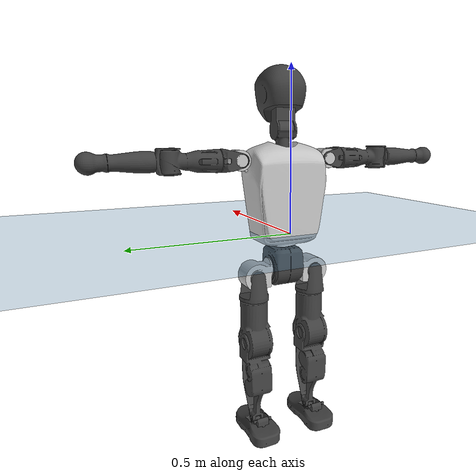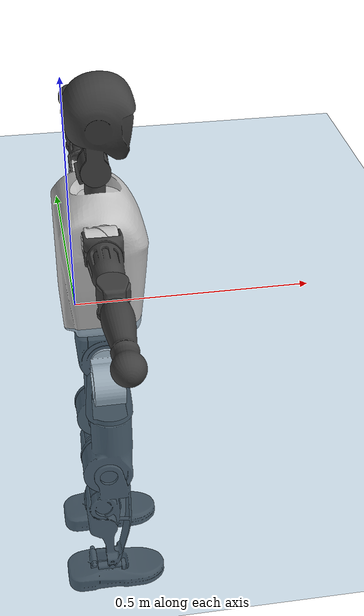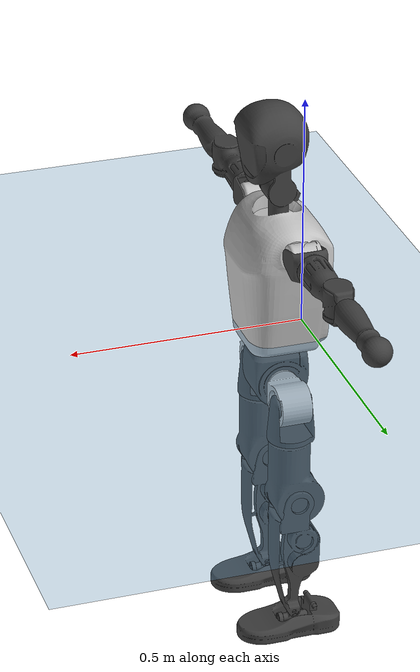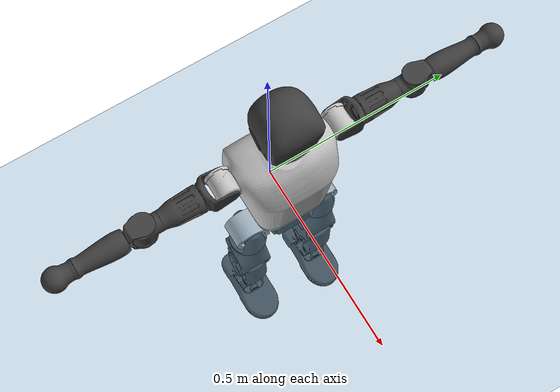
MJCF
<mujoco model="T1">
  <compiler angle="radian" assetdir="assets" balanceinertia="true" inertiafromgeom="false"/>

  <option timestep="0.005" density="1.2" viscosity="2e-05"/>

  <size nkey="1"/>

  <visual>
    <quality shadowsize="8192"/>
    <map shadowclip="0.5"/>
  </visual>

  <default>
    <default class="/">
      <joint armature="0.01" damping="0.01" frictionloss="0.1"/>
      <geom contype="0" conaffinity="0" group="1" solref="-1000 -80"/>
      <site size="0.01 0.005 0.005" group="5"/>
      <general forcelimited="true" biastype="affine" gainprm="25" biasprm="0 -25 -0.6"/>
      <default class="t1">
        <geom rgba="0.25 0.25 0.25 1"/>
        <default class="visual">
          <geom type="mesh" group="2"/>
        </default>
        <default class="collision">
          <geom group="3"/>
        </default>
        <default class="foot">
          <geom size="0.1115 0.05 0.015" type="box" condim="6" group="4" priority="1" solimp="0.015 1 0.015"/>
        </default>
        <default class="reward_collision_sphere">
          <geom group="5" rgba="1 0 0 1"/>
        </default>
      </default>
    </default>
  </default>

  <asset>
    <texture type="skybox" colorspace="auto" name="//unnamed_texture_0" builtin="gradient" rgb1="0.95 0.95 0.95" rgb2="0.95 0.95 0.95" width="100" height="600"/>
    <texture type="2d" colorspace="auto" name="texplane" builtin="checker" rgb1="0.345 0.575 0.748" rgb2="0.345 0.575 0.748" markrgb="1 1 1" width="512" height="512"/>
    <material name="MatPlane" class="/" texture="texplane" texuniform="true" texrepeat="2 2" specular="0.9"/>
    <mesh name="Trunk" class="/" file="Trunk.stl"/>
    <mesh name="H1" class="/" file="H1.stl"/>
    <mesh name="H2" class="/" file="H2.stl"/>
    <mesh name="AL1" class="/" file="AL1.stl"/>
    <mesh name="AL2" class="/" file="AL2.stl"/>
    <mesh name="AL3" class="/" file="AL3.stl"/>
    <mesh name="left_hand_link" class="/" file="left_hand_link.stl"/>
    <mesh name="AR1" class="/" file="AR1.stl"/>
    <mesh name="AR2" class="/" file="AR2.stl"/>
    <mesh name="AR3" class="/" file="AR3.stl"/>
    <mesh name="right_hand_link" class="/" file="right_hand_link.stl"/>
    <mesh name="Waist" class="/" file="Waist.stl"/>
    <mesh name="Hip_Pitch_Left" class="/" file="Hip_Pitch_Left.stl"/>
    <mesh name="Hip_Roll_Left" class="/" file="Hip_Roll_Left.stl"/>
    <mesh name="Hip_Yaw_Left" class="/" file="Hip_Yaw_Left.stl"/>
    <mesh name="Shank_Left" class="/" file="Shank_Left.stl"/>
    <mesh name="Ankle_Cross_Left" class="/" file="Ankle_Cross_Left.stl"/>
    <mesh name="left_foot_link" class="/" file="left_foot_link.stl"/>
    <mesh name="Hip_Pitch_Right" class="/" file="Hip_Pitch_Right.stl"/>
    <mesh name="Hip_Roll_Right" class="/" file="Hip_Roll_Right.stl"/>
    <mesh name="Hip_Yaw_Right" class="/" file="Hip_Yaw_Right.stl"/>
    <mesh name="Shank_Right" class="/" file="Shank_Right.stl"/>
    <mesh name="Ankle_Cross_Right" class="/" file="Ankle_Cross_Right.stl"/>
    <mesh name="right_foot_link" class="/" file="right_foot_link.stl"/>
  </asset>

  <worldbody>
    <geom name="floor" class="/" size="100 100 0.125" type="plane" group="0" material="MatPlane"/>
    <light name="toplight_shadow" class="/" pos="0 0 5" dir="0.0990148 0.0990148 -0.990148" type="directional" ambient="0.04 0.04 0.04" diffuse="0.55 0.55 0.55" specular="0.12 0.12 0.12"/>
    <light name="toplight_fill" class="/" pos="0 0 5" dir="0.0990148 0.0990148 -0.990148" type="directional" castshadow="false" ambient="0.04 0.04 0.04" diffuse="0.3 0.3 0.3" specular="0.08 0.08 0.08"/>
    <body name="trunk" childclass="t1" pos="-7.5306e-05 0.000958466 -1.03091e-05" quat="1 0.00011687 -1.09864e-05 -5.59455e-05">
      <inertial pos="0.0488709 0.000196642 0.108887" quat="0.999966 0.000859855 -0.00817147 1.22996e-05" mass="10.4866" diaginertia="0.0526656 0.0635473 0.0677057"/>
      <joint name="//unnamed_joint_0" type="free" armature="0" damping="0" frictionloss="0"/>
      <geom name="//unnamed_geom_1" class="visual" rgba="0.76 0.76 0.76 1" mesh="Trunk"/>
      <geom name="//unnamed_geom_2" class="collision" size="0.0721783 0.0962378 0.144357" pos="0.0533712 0 0.124383" type="box"/>
      <geom name="//unnamed_geom_3" class="reward_collision_sphere" size="0.110673" pos="0.0533712 0 0.103653"/>
      <geom name="//unnamed_geom_4" class="reward_collision_sphere" size="0.0144357" pos="0.0533712 0.0816922 0"/>
      <geom name="//unnamed_geom_5" class="reward_collision_sphere" size="0.0144357" pos="0.0533712 -0.0816922 0"/>
      <geom name="//unnamed_geom_6" class="reward_collision_sphere" size="0.0144357" pos="0.0533712 0.102836 0.186575"/>
      <geom name="//unnamed_geom_7" class="reward_collision_sphere" size="0.0144357" pos="0.0533712 -0.102836 0.186575"/>
      <site name="imu" pos="-0.00197492 -0.000259303 0.0022659" size="0.00962378"/>
      <camera name="track" pos="0 -1.92217 0" quat="0.707107 0.707107 0 0" mode="trackcom"/>
      <camera name="ego_camera" pos="0.108521 0 0.435342" quat="-0.5 -0.5 0.5 0.5"/>
      <body name="H1" pos="0.0547644 -0.000220997 0.250606" quat="1 4.85523e-05 4.77791e-05 -5.86094e-05">
        <inertial pos="-0.00137355 -0.00170589 0.0594999" quat="0.763787 -0.0130293 0.00164367 0.645335" mass="0.399263" diaginertia="0.000136469 0.000183396 0.000179872"/>
        <joint name="AAHead_yaw" pos="0 0 0" axis="-0.00233239 -0.00106281 0.999997" range="-1.57847 1.56573" armature="0.0100799" damping="0.0118204" frictionloss="0.0997005"/>
        <geom name="//unnamed_geom_8" class="visual" mesh="H1"/>
        <body name="H2" pos="0.00065113 -0.00196578 0.0641625" quat="1 7.44907e-05 -0.000213347 -0.000313218">
          <inertial pos="0.00621784 0.000300415 0.100811" quat="0.988457 0.106568 -0.0741143 -0.0781236" mass="0.555261" diaginertia="0.00113846 0.00154796 0.00206576"/>
          <joint name="Head_pitch" pos="0 0 0" axis="-0.00176831 -0.999997 0.00151384" range="-1.21783 0.348539" armature="0.00921241" damping="0.00228346" frictionloss="0.0986336"/>
          <geom name="//unnamed_geom_9" class="visual" mesh="H2"/>
          <geom name="//unnamed_geom_10" class="collision" size="0.0769902" pos="0.0088952 0 0.114018"/>
          <geom name="//unnamed_geom_11" class="reward_collision_sphere" size="0.086614" pos="0.0177904 0 0.103653"/>
        </body>
      </body>
      <body name="AL1" pos="0.0523748 0.102455 0.226241" quat="1 0.000322464 -5.04451e-05 0.000364431">
        <inertial pos="-2.84728e-05 0.043107 8.12085e-05" quat="0.504563 0.495965 -0.503857 0.495542" mass="0.477566" diaginertia="0.000771099 0.00105672 0.000352794"/>
        <joint name="Left_Shoulder_Pitch" pos="0 0 0" axis="0.000835133 0.999999 0.00055576" range="-3.29023 1.24476" armature="0.00962992" damping="0.000749661" frictionloss="0.0916643"/>
        <geom name="//unnamed_geom_12" class="visual" rgba="0.76 0.76 0.76 1" mesh="AL1"/>
        <body name="AL2" pos="0.00049291 0.0449272 -0.0002935" quat="1 3.0616e-05 -4.64831e-05 5.4404e-05">
          <inertial pos="0.00410131 0.0371812 0.000659108" quat="0.490025 0.511093 -0.488142 0.510271" mass="0.140769" diaginertia="0.000220231 0.000281493 0.000211655"/>
          <joint name="Left_Shoulder_Roll" pos="0 0 0" axis="-0.999999 0.00059371 0.00130834" range="-1.59119 1.73415" armature="0.0101591" damping="0.00556984" frictionloss="0.0965859"/>
          <geom name="//unnamed_geom_13" class="visual" mesh="AL2"/>
          <body name="AL3" pos="0.000196968 0.0587593 -0.000342516" quat="1 -2.36873e-06 -8.9979e-05 5.35883e-05">
            <inertial pos="0.000175946 0.0810062 -0.000773139" quat="0.70699 0.707209 -0.00443451 0.000114779" mass="0.900319" diaginertia="0.00719897 0.0104757 0.000745555"/>
            <joint name="Left_Elbow_Pitch" pos="0 0 0" axis="0.0014461 -0.999988 0.00469334" stiffness="0.00347499" range="-2.29902 2.28657" armature="0.0104573" damping="0.00760442" frictionloss="0.0978093"/>
            <geom name="//unnamed_geom_14" class="visual" mesh="AL3"/>
            <geom name="//unnamed_geom_15" class="collision" size="0.0288713 0.0721783" pos="0 0.0480542 0" quat="0.707105 0.707108 0 0" type="cylinder"/>
            <geom name="//unnamed_geom_16" class="reward_collision_sphere" size="0.0346456"/>
            <body name="left_hand_link" pos="0.000403183 0.142201 0.00131309" quat="1 0.000336295 0.00014197 0.000413908">
              <inertial pos="-0.00122688 0.104475 0.000333554" quat="0.707644 0.706569 2.60462e-05 -7.56325e-05" mass="0.291607" diaginertia="0.00451274 0.00659993 0.000259512"/>
              <joint name="Left_Elbow_Yaw" pos="0 0 0" axis="0.00313086 0.00453505 0.999985" range="-2.44028 -0.0253281" armature="0.00937883" damping="0.00805847" frictionloss="0.095325"/>
              <geom name="//unnamed_geom_17" class="visual" mesh="left_hand_link"/>
              <geom name="//unnamed_geom_18" class="collision" size="0.0288713 0.0842081" pos="0 0.124941 0" quat="0.707105 0.707108 0 0" type="cylinder"/>
              <geom name="//unnamed_geom_19" class="reward_collision_sphere" size="0.0481189"/>
              <geom name="//unnamed_geom_20" class="reward_collision_sphere" size="0.0336832" pos="0 0.105719 0"/>
              <geom name="//unnamed_geom_21" class="reward_collision_sphere" size="0.0336832" pos="0 0.206633 0"/>
            </body>
          </body>
        </body>
      </body>
      <body name="AR1" pos="0.049925 -0.101758 0.227106" quat="1 1.84465e-05 0.000833557 -6.88315e-05">
        <inertial pos="-0.000337949 -0.0451906 -0.000320362" quat="0.501704 0.496452 -0.503266 0.498549" mass="0.467967" diaginertia="0.000767123 0.00105796 0.000345091"/>
        <joint name="Right_Shoulder_Pitch" pos="0 0 0" axis="-0.000475312 -0.999987 0.00500606" range="-1.22504 3.32851" armature="0.00981331" damping="0.0105692" frictionloss="0.100812"/>
        <geom name="//unnamed_geom_22" class="visual" rgba="0.76 0.76 0.76 1" mesh="AR1"/>
        <body name="AR2" pos="0.000686584 -0.0447761 0.000817076" quat="1 -0.000504556 -0.000183357 7.63905e-05">
          <inertial pos="0.00409461 -0.0365141 0.000477373" quat="0.513374 0.486444 -0.514423 0.484962" mass="0.141282" diaginertia="0.000223594 0.000286175 0.000210985"/>
          <joint name="Right_Shoulder_Roll" pos="0 0 0" axis="-0.999974 -0.00570771 -0.00444552" range="-1.75457 1.55795" armature="0.00973215" damping="0.00356904" frictionloss="0.104189"/>
          <geom name="//unnamed_geom_23" class="visual" mesh="AR2"/>
          <body name="AR3" pos="-0.00111796 -0.0590903 -0.00195949" quat="1 6.37891e-06 -2.5815e-05 -0.00010911">
            <inertial pos="-0.000486416 -0.0828981 0.000844467" quat="0.709247 0.704959 0.000239441 0.00115052" mass="0.911324" diaginertia="0.00719058 0.0105057 0.000749383"/>
            <joint name="Right_Elbow_Pitch" pos="0 0 0" axis="0.000536215 0.999998 -0.00204702" range="-2.2829 2.2852" armature="0.00919496" damping="0.0104171" frictionloss="0.0930266"/>
            <geom name="//unnamed_geom_24" class="visual" mesh="AR3"/>
            <geom name="//unnamed_geom_25" class="collision" size="0.0288713 0.0721783" pos="0 -0.0480542 0" quat="0.707105 0.707108 0 0" type="cylinder"/>
            <geom name="//unnamed_geom_26" class="reward_collision_sphere" size="0.0346456"/>
            <body name="right_hand_link" pos="-0.000102592 -0.141041 0.000334425" quat="1 1.09119e-05 5.75485e-05 -1.16792e-05">
              <inertial pos="-0.000281869 -0.104197 0.00200219" quat="0.706134 0.708078 4.0886e-05 -2.02634e-05" mass="0.293344" diaginertia="0.0045819 0.00674827 0.000260545"/>
              <joint name="Right_Elbow_Yaw" pos="0 0 0" axis="0.00330379 0.00470252 0.999983" range="0.00366539 2.42401" armature="0.00989704" damping="0.000106019" frictionloss="0.0947527"/>
              <geom name="//unnamed_geom_27" class="visual" mesh="right_hand_link"/>
              <geom name="//unnamed_geom_28" class="collision" size="0.0288713 0.0842081" pos="0 -0.124941 0" quat="0.707105 0.707108 0 0" type="cylinder"/>
              <geom name="//unnamed_geom_29" class="reward_collision_sphere" size="0.0481189"/>
              <geom name="//unnamed_geom_30" class="reward_collision_sphere" size="0.0336832" pos="0 -0.105719 0"/>
              <geom name="//unnamed_geom_31" class="reward_collision_sphere" size="0.0336832" pos="0 -0.206633 0"/>
            </body>
          </body>
        </body>
      </body>
      <body name="Waist" pos="0.0564194 -0.00137654 -0.118129" quat="1 0.000259488 -0.000188757 -0.000273393">
        <inertial pos="0.00137184 -0.000536552 0.00814369" quat="0.984135 -0.00031502 -0.177405 0.00257317" mass="2.25428" diaginertia="0.0029487 0.00425288 0.00554786"/>
        <joint name="Waist" pos="0 0 0" axis="0.00350921 0.00215322 0.999992" stiffness="0.000295811" range="-1.56161 1.55784" armature="0.00949168" damping="0.00917505" frictionloss="0.0985015"/>
        <geom name="//unnamed_geom_32" class="visual" mesh="Waist"/>
        <body name="Hip_Pitch_Left" pos="0.00178198 0.100764 -0.000224407" quat="1 0.000428701 0.000185956 0.000552008">
          <inertial pos="0.000771838 -0.00639464 -0.0186849" quat="0.975073 0.221339 0.0154708 0.00125235" mass="0.899697" diaginertia="0.00100898 0.00121092 0.00148305"/>
          <joint name="Left_Hip_Pitch" pos="0 0 0" axis="0.00266469 0.999945 -0.0101828" range="-1.79809 1.59554" armature="0.00922084" damping="0.00661755" frictionloss="0.0977753"/>
          <geom name="//unnamed_geom_33" class="visual" rgba="0.76 0.76 0.76 1" mesh="Hip_Pitch_Left"/>
          <body name="Hip_Roll_Left" pos="0.00110872 0.00164946 -0.0209712" quat="1 -2.61025e-05 -7.89338e-05 0.000983762">
            <inertial pos="0.00109857 -3.49407e-05 -0.0552965" quat="0.70562 -0.00664954 -0.00659211 0.708528" mass="0.335866" diaginertia="0.000962926 0.00121873 0.000605137"/>
            <joint name="Left_Hip_Roll" pos="0 0 0" axis="-0.999991 -0.00434837 -0.000268448" range="-1.58661 0.206534" armature="0.010103" damping="0.00731771" frictionloss="0.094297"/>
            <geom name="//unnamed_geom_34" class="visual" mesh="Hip_Roll_Left"/>
            <geom name="//unnamed_geom_35" class="reward_collision_sphere" size="0.0529308"/>
            <body name="Hip_Yaw_Left" pos="0.000224349 0.000156353 -0.0844898" quat="1 8.78308e-05 -0.000212347 -0.000225817">
              <inertial pos="-0.00620923 -0.000316944 -0.0925035" quat="0.697643 -0.0325545 -0.0369594 0.714751" mass="1.93315" diaginertia="0.0142044 0.0204108 0.00307297"/>
              <joint name="Left_Hip_Yaw" pos="0 0 0" axis="0.000106721 0.000253262 -1" stiffness="0.000126587" range="-1.00154 1.00992" armature="0.00965239" damping="0.00455621" frictionloss="0.0972082"/>
              <geom name="//unnamed_geom_36" class="visual" mesh="Hip_Yaw_Left"/>
              <geom name="//unnamed_geom_37" class="collision" size="0.0481189 0.0769902" type="cylinder"/>
              <body name="Shank_Left" pos="-0.0107566 -0.00029349 -0.138735" quat="1 7.7058e-05 -0.000178243 -0.000157706">
                <inertial pos="-0.00462552 0.000527047 -0.129092" quat="0.997538 0.000777771 -0.0244434 0.0657245" mass="1.50937" diaginertia="0.0191095 0.0281248 0.00217696"/>
                <joint name="Left_Knee_Pitch" pos="0 0 0" axis="-0.00143075 0.999993 0.00349922" range="-0.0114574 2.3598" armature="0.00996319" damping="0.00972378" frictionloss="0.0959283"/>
                <geom name="//unnamed_geom_38" class="visual" mesh="Shank_Left"/>
                <geom name="//unnamed_geom_39" class="collision" size="0.0481189 0.0721783" pos="0 0 -0.124383" type="cylinder"/>
                <geom name="//unnamed_geom_40" class="reward_collision_sphere" size="0.0625546"/>
                <body name="Ankle_Cross_Left" pos="-0.000725246 -0.000204511 -0.290519" quat="1 -0.000148551 9.92015e-05 -0.000410485">
                  <inertial pos="-0.00218597 -0.00134237 -0.00874331" quat="0.443438 0.551517 0.550241 0.4432" mass="0.0654027" diaginertia="1.62305e-05 2.12318e-05 1.35464e-05"/>
                  <joint name="Left_Ankle_Pitch" pos="0 0 0" axis="0.000952213 0.999999 -0.000490368" stiffness="0.00263592" range="-0.861248 0.341584" armature="0.0100708" damping="0.00991746" frictionloss="0.0971164"/>
                  <geom name="//unnamed_geom_41" class="visual" mesh="Ankle_Cross_Left"/>
                  <body name="left_foot_link" pos="-0.000513644 -0.00108206 -0.0123289" quat="1 -6.02605e-06 3.70642e-06 5.88306e-06">
                    <inertial pos="0.000432712 -4.71097e-05 -0.00785778" quat="0.000173067 0.620865 -5.38293e-05 0.783918" mass="0.611316" diaginertia="0.00149522 0.0019651 0.00263845"/>
                    <joint name="Left_Ankle_Roll" pos="0 0 0" axis="-0.999994 0.00212977 0.00274157" range="-0.441148 0.437045" armature="0.00929601" damping="0.0144431" frictionloss="0.0964842"/>
                    <geom name="//unnamed_geom_42" class="visual" mesh="left_foot_link"/>
                    <geom name="left_foot" class="foot" size="0.11155 0.048516 0.0144835" pos="0.0088952 0 -0.0155479"/>
                    <geom name="//unnamed_geom_44" class="reward_collision_sphere" size="0.0500436" pos="0.0088952 0 -0.0155479"/>
                    <geom name="//unnamed_geom_45" class="reward_collision_sphere" size="0.0288713" pos="0.0845044 -0.022105 -0.0155479"/>
                    <geom name="//unnamed_geom_46" class="reward_collision_sphere" size="0.0288713" pos="-0.0622664 -0.022105 -0.0155479"/>
                    <site name="left_foot" class="foot" pos="0.0088952 0 -0.0155479" size="0.00962378"/>
                  </body>
                </body>
              </body>
            </body>
          </body>
        </body>
        <body name="Hip_Pitch_Right" pos="-0.000775681 -0.102847 0.000475809" quat="0.999999 0.00048954 -0.000115149 0.000959333">
          <inertial pos="-6.71143e-05 0.00543565 -0.0185521" quat="0.973141 -0.229861 0.0112438 -0.00587255" mass="0.890059" diaginertia="0.000992102 0.00118192 0.00148572"/>
          <joint name="Right_Hip_Pitch" pos="0 0 0" axis="2.97406e-05 -1 -0.00034809" range="-1.56319 1.80214" armature="0.010084" damping="0.00853459" frictionloss="0.10239"/>
          <geom name="//unnamed_geom_47" class="visual" rgba="0.76 0.76 0.76 1" mesh="Hip_Pitch_Right"/>
          <body name="Hip_Roll_Right" pos="-0.000295236 0.00150864 -0.0193391" quat="1 -3.53968e-05 -3.52167e-05 -8.30895e-05">
            <inertial pos="0.000229231 0.00128272 -0.0568603" quat="0.707013 -0.00264381 -0.00279078 0.70719" mass="0.336917" diaginertia="0.00095396 0.0012345 0.000612098"/>
            <joint name="Right_Hip_Roll" pos="0 0 0" axis="-0.999998 0.0016795 -0.00101546" range="-0.201427 1.57173" armature="0.00917107" damping="0.0104969" frictionloss="0.0984186"/>
            <geom name="//unnamed_geom_48" class="visual" mesh="Hip_Roll_Right"/>
            <geom name="//unnamed_geom_49" class="reward_collision_sphere" size="0.0529308"/>
            <body name="Hip_Yaw_Right" pos="-9.1422e-05 0.000561436 -0.0843429" quat="1 0.000240892 -0.000164342 -2.51112e-05">
              <inertial pos="-0.00682505 0.000226789 -0.0925604" quat="0.714489 -0.0315288 -0.0336763 0.698124" mass="1.89646" diaginertia="0.0143093 0.0205932 0.00312785"/>
              <joint name="Right_Hip_Yaw" pos="0 0 0" axis="-0.000671001 0.00117604 -0.999999" stiffness="0.00035555" range="-1.00863 0.998554" armature="0.00879853" damping="0.00958969" frictionloss="0.101034"/>
              <geom name="//unnamed_geom_50" class="visual" mesh="Hip_Yaw_Right"/>
              <geom name="//unnamed_geom_51" class="collision" size="0.0481189 0.0769902" type="cylinder"/>
              <body name="Shank_Right" pos="-0.0138621 0.000439472 -0.138839" quat="1 8.02644e-05 -0.000247293 0.000415708">
                <inertial pos="-0.00548027 -0.000368168 -0.125911" quat="0.999256 -8.84171e-05 -0.0248157 -0.0295382" mass="1.59332" diaginertia="0.019772 0.0286181 0.00239961"/>
                <joint name="Right_Knee_Pitch" pos="0 0 0" axis="0.00119717 -0.999958 0.00908986" range="-2.33612 -0.00912523" armature="0.00939544" damping="0.00665563" frictionloss="0.0998063"/>
                <geom name="//unnamed_geom_52" class="visual" mesh="Shank_Right"/>
                <geom name="//unnamed_geom_53" class="collision" size="0.0481189 0.0721783" pos="0 0 -0.124383" type="cylinder"/>
                <geom name="//unnamed_geom_54" class="reward_collision_sphere" size="0.0625546"/>
                <body name="Ankle_Cross_Right" pos="-0.000787618 -0.00120295 -0.290141" quat="1 0.000692158 0.000462923 1.04168e-05">
                  <inertial pos="-0.00257408 0.000749722 -0.00838785" quat="0.440855 0.554571 0.549089 0.443394" mass="0.0648652" diaginertia="1.61306e-05 2.10257e-05 1.35194e-05"/>
                  <joint name="Right_Ankle_Pitch" pos="0 0 0" axis="0.00146988 -0.999997 -0.0019474" stiffness="0.000587987" range="-0.357642 0.868494" armature="0.00959059" damping="0.00880666" frictionloss="0.093745"/>
                  <geom name="//unnamed_geom_55" class="visual" mesh="Ankle_Cross_Right"/>
                  <body name="right_foot_link" pos="-0.0004604 -0.00189729 -0.0114794" quat="1 3.01446e-05 7.03575e-05 7.45208e-06">
                    <inertial pos="-0.000199358 -0.000538825 -0.00967798" quat="6.6244e-05 0.620588 -0.000119192 0.784137" mass="0.614139" diaginertia="0.00150407 0.00195775 0.00263158"/>
                    <joint name="Right_Ankle_Roll" pos="0 0 0" axis="-0.999995 0.00114657 -0.00285378" range="-0.404376 0.434381" armature="0.00983447" damping="0.00957481" frictionloss="0.0982228"/>
                    <geom name="//unnamed_geom_56" class="visual" mesh="right_foot_link"/>
                    <geom name="right_foot" class="foot" size="0.0987412 0.0487791 0.0145907" pos="0.0088952 0 -0.0155479"/>
                    <geom name="//unnamed_geom_58" class="reward_collision_sphere" size="0.0384951"/>
                    <geom name="//unnamed_geom_59" class="reward_collision_sphere" size="0.0288713" pos="0.0088952 0 -0.0155479"/>
                    <geom name="//unnamed_geom_60" class="reward_collision_sphere" size="0.0288713" pos="0.0845044 0.022105 -0.0155479"/>
                    <geom name="//unnamed_geom_61" class="reward_collision_sphere" size="0.0288713" pos="-0.0622664 0.022105 -0.0155479"/>
                    <site name="right_foot" class="foot" pos="0.0088952 0 -0.0155479" size="0.00962378"/>
                  </body>
                </body>
              </body>
            </body>
          </body>
        </body>
      </body>
    </body>
  </worldbody>

  <contact>
    <pair class="/" geom1="floor" geom2="left_foot" name="//unnamed_contact_0"/>
    <pair class="/" geom1="floor" geom2="right_foot" name="//unnamed_contact_1"/>
  </contact>

  <actuator>
    <general name="AAHead_yaw" class="/" joint="AAHead_yaw" forcerange="-6.95689 6.95689" gainprm="23.8787" biasprm="0 -23.8787 -0.571025"/>
    <general name="Head_pitch" class="/" joint="Head_pitch" forcerange="-6.60988 6.60988" gainprm="23.8787" biasprm="0 -23.8787 -0.571025"/>
    <general name="Left_Shoulder_Pitch" class="/" joint="Left_Shoulder_Pitch" forcerange="-16.8925 16.8925" gainprm="23.8787" biasprm="0 -23.8787 -0.571025"/>
    <general name="Left_Shoulder_Roll" class="/" joint="Left_Shoulder_Roll" forcerange="-17.4492 17.4492" gainprm="23.8787" biasprm="0 -23.8787 -0.571025"/>
    <general name="Left_Elbow_Pitch" class="/" joint="Left_Elbow_Pitch" forcerange="-17.2511 17.2511" gainprm="23.8787" biasprm="0 -23.8787 -0.571025"/>
    <general name="Left_Elbow_Yaw" class="/" joint="Left_Elbow_Yaw" forcerange="-17.1754 17.1754" gainprm="23.8787" biasprm="0 -23.8787 -0.571025"/>
    <general name="Right_Shoulder_Pitch" class="/" joint="Right_Shoulder_Pitch" forcerange="-17.3964 17.3964" gainprm="23.8787" biasprm="0 -23.8787 -0.571025"/>
    <general name="Right_Shoulder_Roll" class="/" joint="Right_Shoulder_Roll" forcerange="-17.6704 17.6704" gainprm="23.8787" biasprm="0 -23.8787 -0.571025"/>
    <general name="Right_Elbow_Pitch" class="/" joint="Right_Elbow_Pitch" forcerange="-17.3905 17.3905" gainprm="23.8787" biasprm="0 -23.8787 -0.571025"/>
    <general name="Right_Elbow_Yaw" class="/" joint="Right_Elbow_Yaw" forcerange="-17.2116 17.2116" gainprm="23.8787" biasprm="0 -23.8787 -0.571025"/>
    <general name="Waist" class="/" joint="Waist" forcerange="-28.6074 28.6074" gainprm="23.8787" biasprm="0 -23.8787 -0.571025"/>
    <general name="Left_Hip_Pitch" class="/" joint="Left_Hip_Pitch" forcerange="-43.9534 43.9534" gainprm="23.8787" biasprm="0 -23.8787 -0.571025"/>
    <general name="Left_Hip_Roll" class="/" joint="Left_Hip_Roll" forcerange="-29.1729 29.1729" gainprm="23.8787" biasprm="0 -23.8787 -0.571025"/>
    <general name="Left_Hip_Yaw" class="/" joint="Left_Hip_Yaw" forcerange="-28.526 28.526" gainprm="23.8787" biasprm="0 -23.8787 -0.571025"/>
    <general name="Left_Knee_Pitch" class="/" joint="Left_Knee_Pitch" forcerange="-56.7254 56.7254" gainprm="23.8787" biasprm="0 -23.8787 -0.571025"/>
    <general name="Left_Ankle_Pitch" class="/" joint="Left_Ankle_Pitch" forcerange="-20.3023 20.3023" gainprm="23.8787" biasprm="0 -23.8787 -0.571025"/>
    <general name="Left_Ankle_Roll" class="/" joint="Left_Ankle_Roll" forcerange="-13.5094 13.5094" gainprm="23.8787" biasprm="0 -23.8787 -0.571025"/>
    <general name="Right_Hip_Pitch" class="/" joint="Right_Hip_Pitch" forcerange="-42.9784 42.9784" gainprm="23.8787" biasprm="0 -23.8787 -0.571025"/>
    <general name="Right_Hip_Roll" class="/" joint="Right_Hip_Roll" forcerange="-28.6736 28.6736" gainprm="23.8787" biasprm="0 -23.8787 -0.571025"/>
    <general name="Right_Hip_Yaw" class="/" joint="Right_Hip_Yaw" forcerange="-30.0814 30.0814" gainprm="23.8787" biasprm="0 -23.8787 -0.571025"/>
    <general name="Right_Knee_Pitch" class="/" joint="Right_Knee_Pitch" forcerange="-57.2412 57.2412" gainprm="23.8787" biasprm="0 -23.8787 -0.571025"/>
    <general name="Right_Ankle_Pitch" class="/" joint="Right_Ankle_Pitch" forcerange="-19.2574 19.2574" gainprm="23.8787" biasprm="0 -23.8787 -0.571025"/>
    <general name="Right_Ankle_Roll" class="/" joint="Right_Ankle_Roll" forcerange="-14.3185 14.3185" gainprm="23.8787" biasprm="0 -23.8787 -0.571025"/>
  </actuator>

  <sensor>
    <gyro site="imu" name="imu_angular_velocity"/>
    <velocimeter site="imu" name="imu_linear_velocity"/>
    <framelinvel objtype="site" objname="left_foot" name="left_foot_global_linear_velocity"/>
    <framelinvel objtype="site" objname="right_foot" name="right_foot_global_linear_velocity"/>
  </sensor>

  <keyframe>
    <key name="home" qpos="0 0 0.6385 1 0 0 0 0 0 0 1.4 0 -0.4 0 -1.4 0 0.4 0 -0.4 0 0 0.8 -0.4 0 0.4 0 0 -0.8 0.4 0"/>
  </keyframe>
</mujoco>
